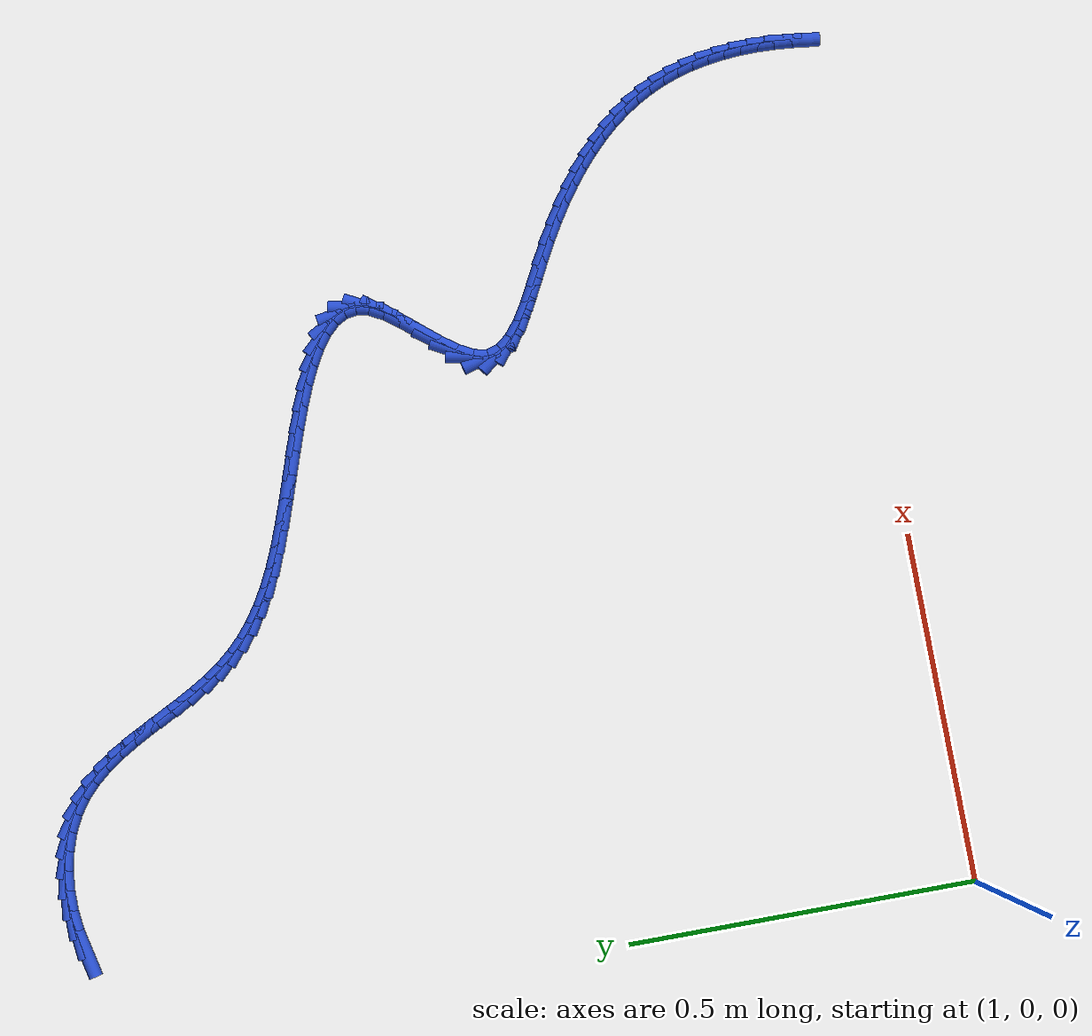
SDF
<sdf version="1.6">
 <world name="default">
  <model name="ground_plane">
   <static>1</static>
   <link name="link">
    <collision name="collision">
     <geometry><plane><normal>0 0 1</normal><size>100 100</size></plane></geometry>
     <surface><friction><ode><mu>100</mu><mu2>50</mu2></ode></friction></surface>
    </collision>
    <visual name="visual">
     <cast_shadows>0</cast_shadows>
     <geometry><plane><normal>0 0 1</normal><size>100 100</size></plane></geometry>
     <material>
      <script><uri>file://media/materials/scripts/gazebo.material</uri><name>Gazebo/WhiteGlow</name></script>
     </material>
    </visual>
   </link>
  </model>
  <model name="line">
   <link name="link_74">
    <pose>1.1326170678237697 1.2563160408730336 0.01 0 1.57 0.22618581099302873</pose>
    <collision name="collision">
     <geometry><cylinder><radius>0.01</radius><length>0.08</length></cylinder></geometry>
    </collision>
    <visual name="visual">
     <material>
      <script><name>Gazebo/Blue</name><uri>file://media/materials/scripts/gazebo.material</uri></script>
     </material>
     <geometry><cylinder><radius>0.01</radius><length>0.08</length></cylinder></geometry>
    </visual>
   </link>
   <link name="link_75">
    <pose>1.1607102075562288 1.2627809363915448 0.01 0 1.57 0.11756282723773595</pose>
    <collision name="collision">
     <geometry><cylinder><radius>0.01</radius><length>0.08</length></cylinder></geometry>
    </collision>
    <visual name="visual">
     <material>
      <script><name>Gazebo/Blue</name><uri>file://media/materials/scripts/gazebo.material</uri></script>
     </material>
     <geometry><cylinder><radius>0.01</radius><length>0.08</length></cylinder></geometry>
    </visual>
   </link>
   <link name="link_76">
    <pose>1.1895263516431351 1.2661843377173596 0.01 0 1.57 0.011538577613577133</pose>
    <collision name="collision">
     <geometry><cylinder><radius>0.01</radius><length>0.08</length></cylinder></geometry>
    </collision>
    <visual name="visual">
     <material>
      <script><name>Gazebo/Blue</name><uri>file://media/materials/scripts/gazebo.material</uri></script>
     </material>
     <geometry><cylinder><radius>0.01</radius><length>0.08</length></cylinder></geometry>
    </visual>
   </link>
   <link name="link_77">
    <pose>1.2184971754272085 1.2665186346522144 0.01 0 1.57 -0.09573892435135192</pose>
    <collision name="collision">
     <geometry><cylinder><radius>0.01</radius><length>0.08</length></cylinder></geometry>
    </collision>
    <visual name="visual">
     <material>
      <script><name>Gazebo/Blue</name><uri>file://media/materials/scripts/gazebo.material</uri></script>
     </material>
     <geometry><cylinder><radius>0.01</radius><length>0.08</length></cylinder></geometry>
    </visual>
   </link>
   <link name="link_78">
    <pose>1.2470543542511672 1.2637762169978428 0.01 0 1.57 -0.20824045659383092</pose>
    <collision name="collision">
     <geometry><cylinder><radius>0.01</radius><length>0.08</length></cylinder></geometry>
    </collision>
    <visual name="visual">
     <material>
      <script><name>Gazebo/Blue</name><uri>file://media/materials/scripts/gazebo.material</uri></script>
     </material>
     <geometry><cylinder><radius>0.01</radius><length>0.08</length></cylinder></geometry>
    </visual>
   </link>
   <link name="link_79">
    <pose>1.2746295634577316 1.257949474555981 0.01 0 1.57 -0.3301546396664207</pose>
    <collision name="collision">
     <geometry><cylinder><radius>0.01</radius><length>0.08</length></cylinder></geometry>
    </collision>
    <visual name="visual">
     <material>
      <script><name>Gazebo/Blue</name><uri>file://media/materials/scripts/gazebo.material</uri></script>
     </material>
     <geometry><cylinder><radius>0.01</radius><length>0.08</length></cylinder></geometry>
    </visual>
   </link>
   <link name="link_80">
    <pose>1.3006544783896192 1.2490307971283632 0.01 0 1.57 -0.46582289307321006</pose>
    <collision name="collision">
     <geometry><cylinder><radius>0.01</radius><length>0.08</length></cylinder></geometry>
    </collision>
    <visual name="visual">
     <material>
      <script><name>Gazebo/Blue</name><uri>file://media/materials/scripts/gazebo.material</uri></script>
     </material>
     <geometry><cylinder><radius>0.01</radius><length>0.08</length></cylinder></geometry>
    </visual>
   </link>
   <link name="link_81">
    <pose>1.3245607743895507 1.2370125745167244 0.01 0 1.57 -0.616027699357937</pose>
    <collision name="collision">
     <geometry><cylinder><radius>0.01</radius><length>0.08</length></cylinder></geometry>
    </collision>
    <visual name="visual">
     <material>
      <script><name>Gazebo/Blue</name><uri>file://media/materials/scripts/gazebo.material</uri></script>
     </material>
     <geometry><cylinder><radius>0.01</radius><length>0.08</length></cylinder></geometry>
    </visual>
   </link>
   <link name="link_82">
    <pose>1.3458663190535174 1.2219297597574503 0.01 0 1.57 -0.7573669783366597</pose>
    <collision name="collision">
     <geometry><cylinder><radius>0.01</radius><length>0.08</length></cylinder></geometry>
    </collision>
    <visual name="visual">
     <material>
      <script><name>Gazebo/Blue</name><uri>file://media/materials/scripts/gazebo.material</uri></script>
     </material>
     <geometry><cylinder><radius>0.01</radius><length>0.08</length></cylinder></geometry>
    </visual>
   </link>
   <link name="link_83">
    <pose>1.3647030384406693 1.204120538642352 0.01 0 1.57 -0.8747426592702926</pose>
    <collision name="collision">
     <geometry><cylinder><radius>0.01</radius><length>0.08</length></cylinder></geometry>
    </collision>
    <visual name="visual">
     <material>
      <script><name>Gazebo/Blue</name><uri>file://media/materials/scripts/gazebo.material</uri></script>
     </material>
     <geometry><cylinder><radius>0.01</radius><length>0.08</length></cylinder></geometry>
    </visual>
   </link>
   <link name="link_84">
    <pose>1.3814693484277358 1.1840546942728223 0.01 0 1.57 -0.9662737038451166</pose>
    <collision name="collision">
     <geometry><cylinder><radius>0.01</radius><length>0.08</length></cylinder></geometry>
    </collision>
    <visual name="visual">
     <material>
      <script><name>Gazebo/Blue</name><uri>file://media/materials/scripts/gazebo.material</uri></script>
     </material>
     <geometry><cylinder><radius>0.01</radius><length>0.08</length></cylinder></geometry>
    </visual>
   </link>
   <link name="link_85">
    <pose>1.3965647457173853 1.162202543480914 0.01 0 1.57 -1.032821092238021</pose>
    <collision name="collision">
     <geometry><cylinder><radius>0.01</radius><length>0.08</length></cylinder></geometry>
    </collision>
    <visual name="visual">
     <material>
      <script><name>Gazebo/Blue</name><uri>file://media/materials/scripts/gazebo.material</uri></script>
     </material>
     <geometry><cylinder><radius>0.01</radius><length>0.08</length></cylinder></geometry>
    </visual>
   </link>
   <link name="link_86">
    <pose>1.4103887270122863 1.1390344030986774 0.01 0 1.57 -1.0761596167393974</pose>
    <collision name="collision">
     <geometry><cylinder><radius>0.01</radius><length>0.08</length></cylinder></geometry>
    </collision>
    <visual name="visual">
     <material>
      <script><name>Gazebo/Blue</name><uri>file://media/materials/scripts/gazebo.material</uri></script>
     </material>
     <geometry><cylinder><radius>0.01</radius><length>0.08</length></cylinder></geometry>
    </visual>
   </link>
   <link name="link_87">
    <pose>1.4233407890151069 1.115020589958164 0.01 0 1.57 -1.0978422841866116</pose>
    <collision name="collision">
     <geometry><cylinder><radius>0.01</radius><length>0.08</length></cylinder></geometry>
    </collision>
    <visual name="visual">
     <material>
      <script><name>Gazebo/Blue</name><uri>file://media/materials/scripts/gazebo.material</uri></script>
     </material>
     <geometry><cylinder><radius>0.01</radius><length>0.08</length></cylinder></geometry>
    </visual>
   </link>
   <link name="link_88">
    <pose>1.4358204284285143 1.0906314208914256 0.01 0 1.57 -1.0986364586509787</pose>
    <collision name="collision">
     <geometry><cylinder><radius>0.01</radius><length>0.08</length></cylinder></geometry>
    </collision>
    <visual name="visual">
     <material>
      <script><name>Gazebo/Blue</name><uri>file://media/materials/scripts/gazebo.material</uri></script>
     </material>
     <geometry><cylinder><radius>0.01</radius><length>0.08</length></cylinder></geometry>
    </visual>
   </link>
   <link name="link_89">
    <pose>1.4482271419551782 1.0663372127305135 0.01 0 1.57 -1.0782880642547221</pose>
    <collision name="collision">
     <geometry><cylinder><radius>0.01</radius><length>0.08</length></cylinder></geometry>
    </collision>
    <visual name="visual">
     <material>
      <script><name>Gazebo/Blue</name><uri>file://media/materials/scripts/gazebo.material</uri></script>
     </material>
     <geometry><cylinder><radius>0.01</radius><length>0.08</length></cylinder></geometry>
    </visual>
   </link>
   <link name="link_90">
    <pose>1.4609604262977658 1.0426082823074787 0.01 0 1.57 -1.0354679431429572</pose>
    <collision name="collision">
     <geometry><cylinder><radius>0.01</radius><length>0.08</length></cylinder></geometry>
    </collision>
    <visual name="visual">
     <material>
      <script><name>Gazebo/Blue</name><uri>file://media/materials/scripts/gazebo.material</uri></script>
     </material>
     <geometry><cylinder><radius>0.01</radius><length>0.08</length></cylinder></geometry>
    </visual>
   </link>
   <link name="link_91">
    <pose>1.4744197781589456 1.0199149464543726 0.01 0 1.57 -0.9679317743501351</pose>
    <collision name="collision">
     <geometry><cylinder><radius>0.01</radius><length>0.08</length></cylinder></geometry>
    </collision>
    <visual name="visual">
     <material>
      <script><name>Gazebo/Blue</name><uri>file://media/materials/scripts/gazebo.material</uri></script>
     </material>
     <geometry><cylinder><radius>0.01</radius><length>0.08</length></cylinder></geometry>
    </visual>
   </link>
   <link name="link_92">
    <pose>1.4890045131993885 0.9987269936287312 0.01 0 1.57 -0.8793238986017864</pose>
    <collision name="collision">
     <geometry><cylinder><radius>0.01</radius><length>0.08</length></cylinder></geometry>
    </collision>
    <visual name="visual">
     <material>
      <script><name>Gazebo/Blue</name><uri>file://media/materials/scripts/gazebo.material</uri></script>
     </material>
     <geometry><cylinder><radius>0.01</radius><length>0.08</length></cylinder></geometry>
    </visual>
   </link>
   <link name="link_93">
    <pose>1.5050539896230173 0.9793392253079997 0.01 0 1.57 -0.7857559925746583</pose>
    <collision name="collision">
     <geometry><cylinder><radius>0.01</radius><length>0.08</length></cylinder></geometry>
    </collision>
    <visual name="visual">
     <material>
      <script><name>Gazebo/Blue</name><uri>file://media/materials/scripts/gazebo.material</uri></script>
     </material>
     <geometry><cylinder><radius>0.01</radius><length>0.08</length></cylinder></geometry>
    </visual>
   </link>
   <link name="link_94">
    <pose>1.5227612168407707 0.9616193212284622 0.01 0 1.57 -0.6937780980455763</pose>
    <collision name="collision">
     <geometry><cylinder><radius>0.01</radius><length>0.08</length></cylinder></geometry>
    </collision>
    <visual name="visual">
     <material>
      <script><name>Gazebo/Blue</name><uri>file://media/materials/scripts/gazebo.material</uri></script>
     </material>
     <geometry><cylinder><radius>0.01</radius><length>0.08</length></cylinder></geometry>
    </visual>
   </link>
   <link name="link_95">
    <pose>1.5422972941346655 0.9453710159976157 0.01 0 1.57 -0.607532467408672</pose>
    <collision name="collision">
     <geometry><cylinder><radius>0.01</radius><length>0.08</length></cylinder></geometry>
    </collision>
    <visual name="visual">
     <material>
      <script><name>Gazebo/Blue</name><uri>file://media/materials/scripts/gazebo.material</uri></script>
     </material>
     <geometry><cylinder><radius>0.01</radius><length>0.08</length></cylinder></geometry>
    </visual>
   </link>
   <link name="link_96">
    <pose>1.5638333207867192 0.9303980442229566 0.01 0 1.57 -0.530110682177154</pose>
    <collision name="collision">
     <geometry><cylinder><radius>0.01</radius><length>0.08</length></cylinder></geometry>
    </collision>
    <visual name="visual">
     <material>
      <script><name>Gazebo/Blue</name><uri>file://media/materials/scripts/gazebo.material</uri></script>
     </material>
     <geometry><cylinder><radius>0.01</radius><length>0.08</length></cylinder></geometry>
    </visual>
   </link>
   <link name="link_97">
    <pose>1.5875403960789483 0.9165041405119817 0.01 0 1.57 -0.46323259869383204</pose>
    <collision name="collision">
     <geometry><cylinder><radius>0.01</radius><length>0.08</length></cylinder></geometry>
    </collision>
    <visual name="visual">
     <material>
      <script><name>Gazebo/Blue</name><uri>file://media/materials/scripts/gazebo.material</uri></script>
     </material>
     <geometry><cylinder><radius>0.01</radius><length>0.08</length></cylinder></geometry>
    </visual>
   </link>
   <link name="link_98">
    <pose>1.6135896192933696 0.9034930394721876 0.01 0 1.57 -0.40755292005732124</pose>
    <collision name="collision">
     <geometry><cylinder><radius>0.01</radius><length>0.08</length></cylinder></geometry>
    </collision>
    <visual name="visual">
     <material>
      <script><name>Gazebo/Blue</name><uri>file://media/materials/scripts/gazebo.material</uri></script>
     </material>
     <geometry><cylinder><radius>0.01</radius><length>0.08</length></cylinder></geometry>
    </visual>
   </link>
   <link name="link_99">
    <pose>1.642135094615783 0.8911692456800083 0.01 0 1.57 -0.36642743816707135</pose>
    <collision name="collision">
     <geometry><cylinder><radius>0.01</radius><length>0.08</length></cylinder></geometry>
    </collision>
    <visual name="visual">
     <material>
      <script><name>Gazebo/Blue</name><uri>file://media/materials/scripts/gazebo.material</uri></script>
     </material>
     <geometry><cylinder><radius>0.01</radius><length>0.08</length></cylinder></geometry>
    </visual>
   </link>
   <link name="link_100">
    <pose>1.6729181852993695 0.8793559630880607 0.01 0 1.57 -0.34059297655302817</pose>
    <collision name="collision">
     <geometry><cylinder><radius>0.01</radius><length>0.08</length></cylinder></geometry>
    </collision>
    <visual name="visual">
     <material>
      <script><name>Gazebo/Blue</name><uri>file://media/materials/scripts/gazebo.material</uri></script>
     </material>
     <geometry><cylinder><radius>0.01</radius><length>0.08</length></cylinder></geometry>
    </visual>
   </link>
   <link name="link_101">
    <pose>1.705254994781649 0.8678956621976361 0.01 0 1.57 -0.32720740651469526</pose>
    <collision name="collision">
     <geometry><cylinder><radius>0.01</radius><length>0.08</length></cylinder></geometry>
    </collision>
    <visual name="visual">
     <material>
      <script><name>Gazebo/Blue</name><uri>file://media/materials/scripts/gazebo.material</uri></script>
     </material>
     <geometry><cylinder><radius>0.01</radius><length>0.08</length></cylinder></geometry>
    </visual>
   </link>
   <link name="link_102">
    <pose>1.7384421269265278 0.8566316969452108 0.01 0 1.57 -0.3247962985498826</pose>
    <collision name="collision">
     <geometry><cylinder><radius>0.01</radius><length>0.08</length></cylinder></geometry>
    </collision>
    <visual name="visual">
     <material>
      <script><name>Gazebo/Blue</name><uri>file://media/materials/scripts/gazebo.material</uri></script>
     </material>
     <geometry><cylinder><radius>0.01</radius><length>0.08</length></cylinder></geometry>
    </visual>
   </link>
   <link name="link_103">
    <pose>1.7717761855979126 0.8454074212672618 0.01 0 1.57 -0.3331119876382442</pose>
    <collision name="collision">
     <geometry><cylinder><radius>0.01</radius><length>0.08</length></cylinder></geometry>
    </collision>
    <visual name="visual">
     <material>
      <script><name>Gazebo/Blue</name><uri>file://media/materials/scripts/gazebo.material</uri></script>
     </material>
     <geometry><cylinder><radius>0.01</radius><length>0.08</length></cylinder></geometry>
    </visual>
   </link>
   <link name="link_104">
    <pose>1.8045537746597091 0.8340661891002656 0.01 0 1.57 -0.353075365050716</pose>
    <collision name="collision">
     <geometry><cylinder><radius>0.01</radius><length>0.08</length></cylinder></geometry>
    </collision>
    <visual name="visual">
     <material>
      <script><name>Gazebo/Blue</name><uri>file://media/materials/scripts/gazebo.material</uri></script>
     </material>
     <geometry><cylinder><radius>0.01</radius><length>0.08</length></cylinder></geometry>
    </visual>
   </link>
   <link name="link_105">
    <pose>1.8360714979758248 0.8224513543806999 0.01 0 1.57 -0.38700272316352147</pose>
    <collision name="collision">
     <geometry><cylinder><radius>0.01</radius><length>0.08</length></cylinder></geometry>
    </collision>
    <visual name="visual">
     <material>
      <script><name>Gazebo/Blue</name><uri>file://media/materials/scripts/gazebo.material</uri></script>
     </material>
     <geometry><cylinder><radius>0.01</radius><length>0.08</length></cylinder></geometry>
    </visual>
   </link>
   <link name="link_106">
    <pose>1.8656259594101647 0.8104062710450405 0.01 0 1.57 -0.43919974128862316</pose>
    <collision name="collision">
     <geometry><cylinder><radius>0.01</radius><length>0.08</length></cylinder></geometry>
    </collision>
    <visual name="visual">
     <material>
      <script><name>Gazebo/Blue</name><uri>file://media/materials/scripts/gazebo.material</uri></script>
     </material>
     <geometry><cylinder><radius>0.01</radius><length>0.08</length></cylinder></geometry>
    </visual>
   </link>
   <link name="link_107">
    <pose>1.892513762826636 0.7977742930297645 0.01 0 1.57 -0.5171180915167602</pose>
    <collision name="collision">
     <geometry><cylinder><radius>0.01</radius><length>0.08</length></cylinder></geometry>
    </collision>
    <visual name="visual">
     <material>
      <script><name>Gazebo/Blue</name><uri>file://media/materials/scripts/gazebo.material</uri></script>
     </material>
     <geometry><cylinder><radius>0.01</radius><length>0.08</length></cylinder></geometry>
    </visual>
   </link>
   <link name="link_108">
    <pose>1.9160315120891436 0.7843987742713493 0.01 0 1.57 -0.6333022031277994</pose>
    <collision name="collision">
     <geometry><cylinder><radius>0.01</radius><length>0.08</length></cylinder></geometry>
    </collision>
    <visual name="visual">
     <material>
      <script><name>Gazebo/Blue</name><uri>file://media/materials/scripts/gazebo.material</uri></script>
     </material>
     <geometry><cylinder><radius>0.01</radius><length>0.08</length></cylinder></geometry>
    </visual>
   </link>
   <link name="link_109">
    <pose>1.9354758110615946 0.7701230687062703 0.01 0 1.57 -0.8075640687418659</pose>
    <collision name="collision">
     <geometry><cylinder><radius>0.01</radius><length>0.08</length></cylinder></geometry>
    </collision>
    <visual name="visual">
     <material>
      <script><name>Gazebo/Blue</name><uri>file://media/materials/scripts/gazebo.material</uri></script>
     </material>
     <geometry><cylinder><radius>0.01</radius><length>0.08</length></cylinder></geometry>
    </visual>
   </link>
   <link name="link_110">
    <pose>1.9501432636078961 0.7547905302710054 0.01 0 1.57 -1.0639297800094836</pose>
    <collision name="collision">
     <geometry><cylinder><radius>0.01</radius><length>0.08</length></cylinder></geometry>
    </collision>
    <visual name="visual">
     <material>
      <script><name>Gazebo/Blue</name><uri>file://media/materials/scripts/gazebo.material</uri></script>
     </material>
     <geometry><cylinder><radius>0.01</radius><length>0.08</length></cylinder></geometry>
    </visual>
   </link>
   <link name="link_111">
    <pose>1.9593304735919532 0.7382445129020309 0.01 0 1.57 -1.4046948447572063</pose>
    <collision name="collision">
     <geometry><cylinder><radius>0.01</radius><length>0.08</length></cylinder></geometry>
    </collision>
    <visual name="visual">
     <material>
      <script><name>Gazebo/Blue</name><uri>file://media/materials/scripts/gazebo.material</uri></script>
     </material>
     <geometry><cylinder><radius>0.01</radius><length>0.08</length></cylinder></geometry>
    </visual>
   </link>
   <link name="link_112">
    <pose>1.962334044877673 0.7203283705358239 0.01 0 1.57 1.3736539438138777</pose>
    <collision name="collision">
     <geometry><cylinder><radius>0.01</radius><length>0.08</length></cylinder></geometry>
    </collision>
    <visual name="visual">
     <material>
      <script><name>Gazebo/Blue</name><uri>file://media/materials/scripts/gazebo.material</uri></script>
     </material>
     <geometry><cylinder><radius>0.01</radius><length>0.08</length></cylinder></geometry>
    </visual>
   </link>
   <link name="link_113">
    <pose>1.958450581328961 0.7008854571088607 0.01 0 1.57 1.086356418820966</pose>
    <collision name="collision">
     <geometry><cylinder><radius>0.01</radius><length>0.08</length></cylinder></geometry>
    </collision>
    <visual name="visual">
     <material>
      <script><name>Gazebo/Blue</name><uri>file://media/materials/scripts/gazebo.material</uri></script>
     </material>
     <geometry><cylinder><radius>0.01</radius><length>0.08</length></cylinder></geometry>
    </visual>
   </link>
   <link name="link_114">
    <pose>1.9473752430401465 0.6798403729666798 0.01 0 1.57 0.9361550071773569</pose>
    <collision name="collision">
     <geometry><cylinder><radius>0.01</radius><length>0.08</length></cylinder></geometry>
    </collision>
    <visual name="visual">
     <material>
      <script><name>Gazebo/Blue</name><uri>file://media/materials/scripts/gazebo.material</uri></script>
     </material>
     <geometry><cylinder><radius>0.01</radius><length>0.08</length></cylinder></geometry>
    </visual>
   </link>
   <link name="link_115">
    <pose>1.9309711173905755 0.6575596543563763 0.01 0 1.57 0.8768448379969331</pose>
    <collision name="collision">
     <geometry><cylinder><radius>0.01</radius><length>0.08</length></cylinder></geometry>
    </collision>
    <visual name="visual">
     <material>
      <script><name>Gazebo/Blue</name><uri>file://media/materials/scripts/gazebo.material</uri></script>
     </material>
     <geometry><cylinder><radius>0.01</radius><length>0.08</length></cylinder></geometry>
    </visual>
   </link>
   <link name="link_116">
    <pose>1.9118348630278905 0.6345593773560414 0.01 0 1.57 0.8777192642712154</pose>
    <collision name="collision">
     <geometry><cylinder><radius>0.01</radius><length>0.08</length></cylinder></geometry>
    </collision>
    <visual name="visual">
     <material>
      <script><name>Gazebo/Blue</name><uri>file://media/materials/scripts/gazebo.material</uri></script>
     </material>
     <geometry><cylinder><radius>0.01</radius><length>0.08</length></cylinder></geometry>
    </visual>
   </link>
   <link name="link_117">
    <pose>1.8925637198451226 0.6113557365316905 0.01 0 1.57 0.9374171744998748</pose>
    <collision name="collision">
     <geometry><cylinder><radius>0.01</radius><length>0.08</length></cylinder></geometry>
    </collision>
    <visual name="visual">
     <material>
      <script><name>Gazebo/Blue</name><uri>file://media/materials/scripts/gazebo.material</uri></script>
     </material>
     <geometry><cylinder><radius>0.01</radius><length>0.08</length></cylinder></geometry>
    </visual>
   </link>
   <link name="link_118">
    <pose>1.8757549277353012 0.5884649264493386 0.01 0 1.57 1.0814420805946088</pose>
    <collision name="collision">
     <geometry><cylinder><radius>0.01</radius><length>0.08</length></cylinder></geometry>
    </collision>
    <visual name="visual">
     <material>
      <script><name>Gazebo/Blue</name><uri>file://media/materials/scripts/gazebo.material</uri></script>
     </material>
     <geometry><cylinder><radius>0.01</radius><length>0.08</length></cylinder></geometry>
    </visual>
   </link>
   <link name="link_119">
    <pose>1.864005726591455 0.5664031416750008 0.01 0 1.57 1.3757656356547046</pose>
    <collision name="collision">
     <geometry><cylinder><radius>0.01</radius><length>0.08</length></cylinder></geometry>
    </collision>
    <visual name="visual">
     <material>
      <script><name>Gazebo/Blue</name><uri>file://media/materials/scripts/gazebo.material</uri></script>
     </material>
     <geometry><cylinder><radius>0.01</radius><length>0.08</length></cylinder></geometry>
    </visual>
   </link>
   <link name="link_120">
    <pose>1.859913340645307 0.5456865736971777 0.01 0 1.57 -1.2957855601521715</pose>
    <collision name="collision">
     <geometry><cylinder><radius>0.01</radius><length>0.08</length></cylinder></geometry>
    </collision>
    <visual name="visual">
     <material>
      <script><name>Gazebo/Blue</name><uri>file://media/materials/scripts/gazebo.material</uri></script>
     </material>
     <geometry><cylinder><radius>0.01</radius><length>0.08</length></cylinder></geometry>
    </visual>
   </link>
   <link name="link_121">
    <pose>1.8652777223185637 0.5266747466292351 0.01 0 1.57 -0.9077514461564763</pose>
    <collision name="collision">
     <geometry><cylinder><radius>0.01</radius><length>0.08</length></cylinder></geometry>
    </collision>
    <visual name="visual">
     <material>
      <script><name>Gazebo/Blue</name><uri>file://media/materials/scripts/gazebo.material</uri></script>
     </material>
     <geometry><cylinder><radius>0.01</radius><length>0.08</length></cylinder></geometry>
    </visual>
   </link>
   <link name="link_122">
    <pose>1.878964082418147 0.5091504951046035 0.01 0 1.57 -0.6815782414893299</pose>
    <collision name="collision">
     <geometry><cylinder><radius>0.01</radius><length>0.08</length></cylinder></geometry>
    </collision>
    <visual name="visual">
     <material>
      <script><name>Gazebo/Blue</name><uri>file://media/materials/scripts/gazebo.material</uri></script>
     </material>
     <geometry><cylinder><radius>0.01</radius><length>0.08</length></cylinder></geometry>
    </visual>
   </link>
   <link name="link_123">
    <pose>1.8991625357840582 0.49276399446565033 0.01 0 1.57 -0.5596284990199122</pose>
    <collision name="collision">
     <geometry><cylinder><radius>0.01</radius><length>0.08</length></cylinder></geometry>
    </collision>
    <visual name="visual">
     <material>
      <script><name>Gazebo/Blue</name><uri>file://media/materials/scripts/gazebo.material</uri></script>
     </material>
     <geometry><cylinder><radius>0.01</radius><length>0.08</length></cylinder></geometry>
    </visual>
   </link>
   <link name="link_124">
    <pose>1.924063197256298 0.4771654200547432 0.01 0 1.57 -0.49936511088507796</pose>
    <collision name="collision">
     <geometry><cylinder><radius>0.01</radius><length>0.08</length></cylinder></geometry>
    </collision>
    <visual name="visual">
     <material>
      <script><name>Gazebo/Blue</name><uri>file://media/materials/scripts/gazebo.material</uri></script>
     </material>
     <geometry><cylinder><radius>0.01</radius><length>0.08</length></cylinder></geometry>
    </visual>
   </link>
   <link name="link_125">
    <pose>1.9518561816748694 0.4620049472142492 0.01 0 1.57 -0.48107123248109335</pose>
    <collision name="collision">
     <geometry><cylinder><radius>0.01</radius><length>0.08</length></cylinder></geometry>
    </collision>
    <visual name="visual">
     <material>
      <script><name>Gazebo/Blue</name><uri>file://media/materials/scripts/gazebo.material</uri></script>
     </material>
     <geometry><cylinder><radius>0.01</radius><length>0.08</length></cylinder></geometry>
    </visual>
   </link>
   <link name="link_126">
    <pose>1.980731603879774 0.44693275128653603 0.01 0 1.57 -0.4979454350550108</pose>
    <collision name="collision">
     <geometry><cylinder><radius>0.01</radius><length>0.08</length></cylinder></geometry>
    </collision>
    <visual name="visual">
     <material>
      <script><name>Gazebo/Blue</name><uri>file://media/materials/scripts/gazebo.material</uri></script>
     </material>
     <geometry><cylinder><radius>0.01</radius><length>0.08</length></cylinder></geometry>
    </visual>
   </link>
   <link name="link_127">
    <pose>2.0089230835601724 0.43160679913876804 0.01 0 1.57 -0.534458606213626</pose>
    <collision name="collision">
     <geometry><cylinder><radius>0.01</radius><length>0.08</length></cylinder></geometry>
    </collision>
    <visual name="visual">
     <material>
      <script><name>Gazebo/Blue</name><uri>file://media/materials/scripts/gazebo.material</uri></script>
     </material>
     <geometry><cylinder><radius>0.01</radius><length>0.08</length></cylinder></geometry>
    </visual>
   </link>
   <link name="link_128">
    <pose>2.0355526572772105 0.4158441691445646 0.01 0 1.57 -0.5755483298214217</pose>
    <collision name="collision">
     <geometry><cylinder><radius>0.01</radius><length>0.08</length></cylinder></geometry>
    </collision>
    <visual name="visual">
     <material>
      <script><name>Gazebo/Blue</name><uri>file://media/materials/scripts/gazebo.material</uri></script>
     </material>
     <geometry><cylinder><radius>0.01</radius><length>0.08</length></cylinder></geometry>
    </visual>
   </link>
   <link name="link_129">
    <pose>2.06057258629412 0.3996106292254493 0.01 0 1.57 -0.6208915707913679</pose>
    <collision name="collision">
     <geometry><cylinder><radius>0.01</radius><length>0.08</length></cylinder></geometry>
    </collision>
    <visual name="visual">
     <material>
      <script><name>Gazebo/Blue</name><uri>file://media/materials/scripts/gazebo.material</uri></script>
     </material>
     <geometry><cylinder><radius>0.01</radius><length>0.08</length></cylinder></geometry>
    </visual>
   </link>
   <link name="link_130">
    <pose>2.083966981542882 0.38287765143682057 0.01 0 1.57 -0.6707638130912006</pose>
    <collision name="collision">
     <geometry><cylinder><radius>0.01</radius><length>0.08</length></cylinder></geometry>
    </collision>
    <visual name="visual">
     <material>
      <script><name>Gazebo/Blue</name><uri>file://media/materials/scripts/gazebo.material</uri></script>
     </material>
     <geometry><cylinder><radius>0.01</radius><length>0.08</length></cylinder></geometry>
    </visual>
   </link>
   <link name="link_131">
    <pose>2.1057199539554814 0.36561670783407774 0.01 0 1.57 -0.7253796720445793</pose>
    <collision name="collision">
     <geometry><cylinder><radius>0.01</radius><length>0.08</length></cylinder></geometry>
    </collision>
    <visual name="visual">
     <material>
      <script><name>Gazebo/Blue</name><uri>file://media/materials/scripts/gazebo.material</uri></script>
     </material>
     <geometry><cylinder><radius>0.01</radius><length>0.08</length></cylinder></geometry>
    </visual>
   </link>
   <link name="link_132">
    <pose>2.1258156144638995 0.3477992704726193 0.01 0 1.57 -0.7848550401472546</pose>
    <collision name="collision">
     <geometry><cylinder><radius>0.01</radius><length>0.08</length></cylinder></geometry>
    </collision>
    <visual name="visual">
     <material>
      <script><name>Gazebo/Blue</name><uri>file://media/materials/scripts/gazebo.material</uri></script>
     </material>
     <geometry><cylinder><radius>0.01</radius><length>0.08</length></cylinder></geometry>
    </visual>
   </link>
   <link name="link_133">
    <pose>2.1442380740001195 0.3293968114078447 0.01 0 1.57 -0.8491627605158616</pose>
    <collision name="collision">
     <geometry><cylinder><radius>0.01</radius><length>0.08</length></cylinder></geometry>
    </collision>
    <visual name="visual">
     <material>
      <script><name>Gazebo/Blue</name><uri>file://media/materials/scripts/gazebo.material</uri></script>
     </material>
     <geometry><cylinder><radius>0.01</radius><length>0.08</length></cylinder></geometry>
    </visual>
   </link>
   <link name="link_134">
    <pose>2.1609714434961242 0.31038080269515206 0.01 0 1.57 -0.9180865750816743</pose>
    <collision name="collision">
     <geometry><cylinder><radius>0.01</radius><length>0.08</length></cylinder></geometry>
    </collision>
    <visual name="visual">
     <material>
      <script><name>Gazebo/Blue</name><uri>file://media/materials/scripts/gazebo.material</uri></script>
     </material>
     <geometry><cylinder><radius>0.01</radius><length>0.08</length></cylinder></geometry>
    </visual>
   </link>
   <link name="link_135">
    <pose>2.175999833883896 0.2907227163899405 0.01 0 1.57 -0.9911817417658815</pose>
    <collision name="collision">
     <geometry><cylinder><radius>0.01</radius><length>0.08</length></cylinder></geometry>
    </collision>
    <visual name="visual">
     <material>
      <script><name>Gazebo/Blue</name><uri>file://media/materials/scripts/gazebo.material</uri></script>
     </material>
     <geometry><cylinder><radius>0.01</radius><length>0.08</length></cylinder></geometry>
    </visual>
   </link>
   <link name="link_136">
    <pose>2.1893073560954184 0.270394024547609 0.01 0 1.57 -1.0677537478186205</pose>
    <collision name="collision">
     <geometry><cylinder><radius>0.01</radius><length>0.08</length></cylinder></geometry>
    </collision>
    <visual name="visual">
     <material>
      <script><name>Gazebo/Blue</name><uri>file://media/materials/scripts/gazebo.material</uri></script>
     </material>
     <geometry><cylinder><radius>0.01</radius><length>0.08</length></cylinder></geometry>
    </visual>
   </link>
   <link name="link_137">
    <pose>2.2008781210626736 0.2493661992235564 0.01 0 1.57 -1.1468590304881638</pose>
    <collision name="collision">
     <geometry><cylinder><radius>0.01</radius><length>0.08</length></cylinder></geometry>
    </collision>
    <visual name="visual">
     <material>
      <script><name>Gazebo/Blue</name><uri>file://media/materials/scripts/gazebo.material</uri></script>
     </material>
     <geometry><cylinder><radius>0.01</radius><length>0.08</length></cylinder></geometry>
    </visual>
   </link>
   <link name="link_138">
    <pose>2.2106963875171575 0.22761084195568906 0.01 0 1.57 -1.2259890892400405</pose>
    <collision name="collision">
     <geometry><cylinder><radius>0.01</radius><length>0.08</length></cylinder></geometry>
    </collision>
    <visual name="visual">
     <material>
      <script><name>Gazebo/Blue</name><uri>file://media/materials/scripts/gazebo.material</uri></script>
     </material>
     <geometry><cylinder><radius>0.01</radius><length>0.08</length></cylinder></geometry>
    </visual>
   </link>
   <link name="link_139">
    <pose>2.2187730469323346 0.20512288638987805 0.01 0 1.57 -1.3012287498415023</pose>
    <collision name="collision">
     <geometry><cylinder><radius>0.01</radius><length>0.08</length></cylinder></geometry>
    </collision>
    <visual name="visual">
     <material>
      <script><name>Gazebo/Blue</name><uri>file://media/materials/scripts/gazebo.material</uri></script>
     </material>
     <geometry><cylinder><radius>0.01</radius><length>0.08</length></cylinder></geometry>
    </visual>
   </link>
   <link name="link_140">
    <pose>2.2251762543098312 0.18194743294878019 0.01 0 1.57 -1.3716623260565681</pose>
    <collision name="collision">
     <geometry><cylinder><radius>0.01</radius><length>0.08</length></cylinder></geometry>
    </collision>
    <visual name="visual">
     <material>
      <script><name>Gazebo/Blue</name><uri>file://media/materials/scripts/gazebo.material</uri></script>
     </material>
     <geometry><cylinder><radius>0.01</radius><length>0.08</length></cylinder></geometry>
    </visual>
   </link>
   <link name="link_141">
    <pose>2.2299815890518144 0.15813608633895884 0.01 0 1.57 -1.4370250588812636</pose>
    <collision name="collision">
     <geometry><cylinder><radius>0.01</radius><length>0.08</length></cylinder></geometry>
    </collision>
    <visual name="visual">
     <material>
      <script><name>Gazebo/Blue</name><uri>file://media/materials/scripts/gazebo.material</uri></script>
     </material>
     <geometry><cylinder><radius>0.01</radius><length>0.08</length></cylinder></geometry>
    </visual>
   </link>
   <link name="link_142">
    <pose>2.23326463056045 0.13374045126697856 0.01 0 1.57 -1.4972648185628794</pose>
    <collision name="collision">
     <geometry><cylinder><radius>0.01</radius><length>0.08</length></cylinder></geometry>
    </collision>
    <visual name="visual">
     <material>
      <script><name>Gazebo/Blue</name><uri>file://media/materials/scripts/gazebo.material</uri></script>
     </material>
     <geometry><cylinder><radius>0.01</radius><length>0.08</length></cylinder></geometry>
    </visual>
   </link>
   <link name="link_143">
    <pose>2.235100958237906 0.10881213243940348 0.01 0 1.57 -1.5524904508876782</pose>
    <collision name="collision">
     <geometry><cylinder><radius>0.01</radius><length>0.08</length></cylinder></geometry>
    </collision>
    <visual name="visual">
     <material>
      <script><name>Gazebo/Blue</name><uri>file://media/materials/scripts/gazebo.material</uri></script>
     </material>
     <geometry><cylinder><radius>0.01</radius><length>0.08</length></cylinder></geometry>
    </visual>
   </link>
   <link name="link_144">
    <pose>2.2355661514863487 0.08340273456279775 0.01 0 1.57 1.5386712362984902</pose>
    <collision name="collision">
     <geometry><cylinder><radius>0.01</radius><length>0.08</length></cylinder></geometry>
    </collision>
    <visual name="visual">
     <material>
      <script><name>Gazebo/Blue</name><uri>file://media/materials/scripts/gazebo.material</uri></script>
     </material>
     <geometry><cylinder><radius>0.01</radius><length>0.08</length></cylinder></geometry>
    </visual>
   </link>
   <link name="link_145">
    <pose>2.234735789707945 0.05756386234372553 0.01 0 1.57 1.4927480137796418</pose>
    <collision name="collision">
     <geometry><cylinder><radius>0.01</radius><length>0.08</length></cylinder></geometry>
    </collision>
    <visual name="visual">
     <material>
      <script><name>Gazebo/Blue</name><uri>file://media/materials/scripts/gazebo.material</uri></script>
     </material>
     <geometry><cylinder><radius>0.01</radius><length>0.08</length></cylinder></geometry>
    </visual>
   </link>
   <link name="link_146">
    <pose>2.232685452304861 0.03134712048875084 0.01 0 1.57 1.4510118827709266</pose>
    <collision name="collision">
     <geometry><cylinder><radius>0.01</radius><length>0.08</length></cylinder></geometry>
    </collision>
    <visual name="visual">
     <material>
      <script><name>Gazebo/Blue</name><uri>file://media/materials/scripts/gazebo.material</uri></script>
     </material>
     <geometry><cylinder><radius>0.01</radius><length>0.08</length></cylinder></geometry>
    </visual>
   </link>
  </model>
 </world>
</sdf>
